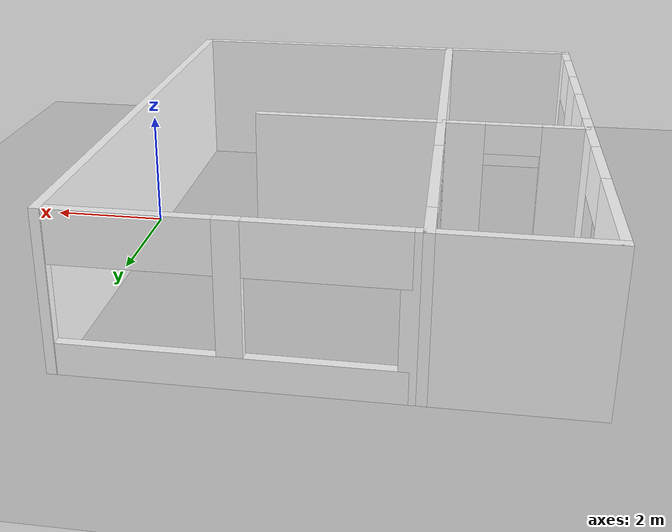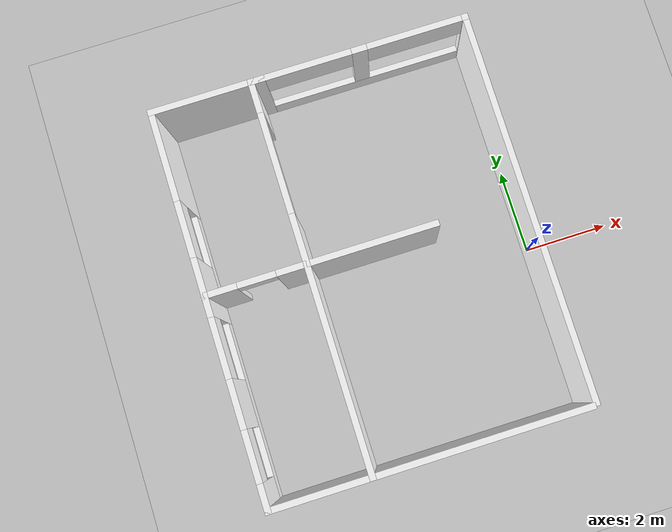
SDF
<?xml version="1.0" ?>
<sdf version="1.6">
  <world name="house_modified">

    <!-- these plugins will be part of the urdf file once the issue with the imu sensor (https://github.com/ignitionrobotics/ign-gazebo/issues/797) will be resolved -->
    <plugin
      filename="ignition-gazebo-physics-system"
      name="ignition::gazebo::systems::Physics">
    </plugin>
    <plugin
      filename="ignition-gazebo-sensors-system"
      name="ignition::gazebo::systems::Sensors">
      <render_engine>ogre2</render_engine>
    </plugin>
    <plugin
      filename="ignition-gazebo-scene-broadcaster-system"
      name="ignition::gazebo::systems::SceneBroadcaster">
    </plugin>
    <plugin
      filename="ignition-gazebo-user-commands-system"
      name="ignition::gazebo::systems::UserCommands">
    </plugin>
    <plugin filename="ignition-gazebo-imu-system"
      name="ignition::gazebo::systems::Imu">
    </plugin>

    <light type="directional" name="sun">
      <cast_shadows>false</cast_shadows>
      <pose>0 0 10 0 0 0</pose>
      <diffuse>0.8 0.8 0.8 1</diffuse>
      <specular>0.2 0.2 0.2 1</specular>
      <attenuation>
        <range>1000</range>
        <constant>0.9</constant>
        <linear>0.01</linear>
        <quadratic>0.001</quadratic>
      </attenuation>
      <direction>-0.5 0.1 -0.9</direction>
    </light>

    <model name="ground_plane">
      <static>true</static>
      <link name="link">
        <collision name="collision">
          <geometry>
            <plane>
              <normal>0.0 0.0 1</normal>
              <size>100 100</size>
            </plane>
          </geometry>
          <surface>
            <friction>
              <ode>
                <mu>0.9</mu>
                <mu2>0.9</mu2>
              </ode>
            </friction>
          </surface>
        </collision>
        <visual name="visual">
          <geometry>
            <plane>
              <normal>0.0 0.0 1</normal>
              <size>100 100</size>
            </plane>
          </geometry>
          <material>
            <ambient>0.8 0.8 0.8 1</ambient>
            <diffuse>0.8 0.8 0.8 1</diffuse>
            <specular>0.8 0.8 0.8 1</specular>
          </material>
        </visual>
      </link>
    </model>

    <model name="turtlebot3_house_modified">
      <static>1</static>
      <include>
        <uri>model://house_modified</uri>
      </include>
    </model>
  </world>
</sdf>
